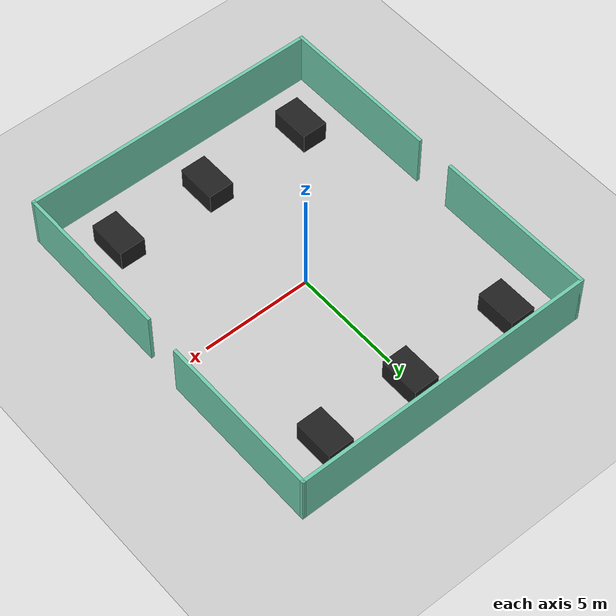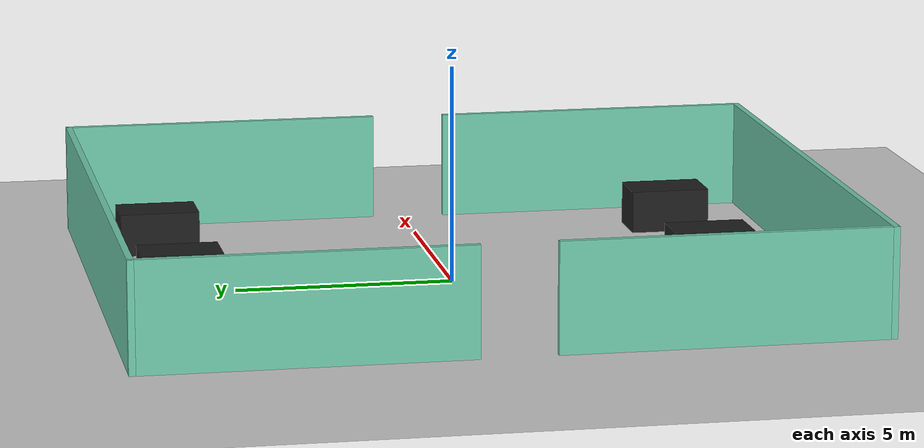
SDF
<sdf version="1.6">
 <world name="default">
  <light name="sun" type="directional">
   <pose>0 0 10 0 -0 0</pose>
   <diffuse>0.8 0.8 0.8 1</diffuse>
   <specular>0.2 0.2 0.2 1</specular>
   <attenuation>
    <range>1000</range>
    <constant>0.9</constant>
    <linear>0.01</linear>
    <quadratic>0.001</quadratic>
   </attenuation>
   <direction>-0.5 0.1 -0.9</direction>
  </light>
  <model name="ground_plane">
   <static>1</static>
   <link name="link">
    <collision name="collision">
     <geometry><plane><normal>0 0 1</normal><size>100 100</size></plane></geometry>
     <surface><friction><ode><mu>100</mu><mu2>50</mu2></ode></friction></surface>
    </collision>
    <visual name="visual">
     <cast_shadows>0</cast_shadows>
     <geometry><plane><normal>0 0 1</normal><size>100 100</size></plane></geometry>
     <material>
      <script><uri>file://media/materials/scripts/gazebo.material</uri><name>Gazebo/Grey</name></script>
     </material>
    </visual>
   </link>
  </model>
  <gravity>0 0 -9.8</gravity>
  <magnetic_field>6e-06 2.3e-05 -4.2e-05</magnetic_field>
  <atmosphere type="adiabatic"/>
  <physics name="default_physics" default="0" type="ode">
   <max_step_size>0.001</max_step_size>
   <real_time_factor>1</real_time_factor>
   <real_time_update_rate>1000</real_time_update_rate>
  </physics>
  <scene><ambient>0.4 0.4 0.4 1</ambient><background>0.7 0.7 0.7 1</background><shadows>1</shadows></scene>
  <spherical_coordinates>
   <surface_model>EARTH_WGS84</surface_model>
   <latitude_deg>0</latitude_deg>
   <longitude_deg>0</longitude_deg>
   <elevation>0</elevation>
   <heading_deg>0</heading_deg>
  </spherical_coordinates>
  <model name="map">
   <link name="link_0">
    <inertial>
     <mass>2.20266</mass>
     <inertia>
      <ixx>0.819058</ixx>
      <ixy>0</ixy>
      <ixz>0</ixz>
      <iyy>0.44077</iyy>
      <iyz>0</iyz>
      <izz>0.892718</izz>
     </inertia>
    </inertial>
    <pose>-4.77477 6.18733 0 0 -0 0</pose>
    <visual name="visual">
     <geometry><box><size>1.18376 1.8607 1</size></box></geometry>
     <material>
      <lighting>1</lighting>
      <script><uri>file://media/materials/scripts/gazebo.material</uri><name>Gazebo/Black</name></script>
      <shader type="pixel"/>
     </material>
    </visual>
    <collision name="collision">
     <geometry><box><size>1.18376 1.8607 1</size></box></geometry>
     <surface>
      <friction>
       <ode><mu>1</mu><mu2>1</mu2><fdir1>0 0 0</fdir1><slip1>0</slip1><slip2>0</slip2></ode>
       <torsional>
        <coefficient>1</coefficient>
        <patch_radius>0</patch_radius>
        <surface_radius>0</surface_radius>
        <use_patch_radius>1</use_patch_radius>
        <ode><slip>0</slip></ode>
       </torsional>
      </friction>
      <bounce><restitution_coefficient>0</restitution_coefficient><threshold>1e+06</threshold></bounce>
      <contact>
       <collide_without_contact>0</collide_without_contact>
       <collide_without_contact_bitmask>1</collide_without_contact_bitmask>
       <collide_bitmask>1</collide_bitmask>
       <ode>
        <soft_cfm>0</soft_cfm>
        <soft_erp>0.2</soft_erp>
        <kp>1e+13</kp>
        <kd>1</kd>
        <max_vel>0.01</max_vel>
        <min_depth>0</min_depth>
       </ode>
       <bullet>
        <split_impulse>1</split_impulse>
        <split_impulse_penetration_threshold>-0.01</split_impulse_penetration_threshold>
        <soft_cfm>0</soft_cfm>
        <soft_erp>0.2</soft_erp>
        <kp>1e+13</kp>
        <kd>1</kd>
       </bullet>
      </contact>
     </surface>
    </collision>
   </link>
   <link name="link_0_clone">
    <inertial>
     <mass>2.20266</mass>
     <inertia>
      <ixx>0.819058</ixx>
      <ixy>0</ixy>
      <ixz>0</ixz>
      <iyy>0.44077</iyy>
      <iyz>0</iyz>
      <izz>0.892718</izz>
     </inertia>
    </inertial>
    <pose>0.195199 6.16883 0 0 -0 0</pose>
    <visual name="visual">
     <geometry><box><size>1.18376 1.8607 1</size></box></geometry>
     <material>
      <lighting>1</lighting>
      <script><uri>file://media/materials/scripts/gazebo.material</uri><name>Gazebo/Black</name></script>
      <shader type="pixel"/>
     </material>
    </visual>
    <collision name="collision">
     <geometry><box><size>1.18376 1.8607 1</size></box></geometry>
     <surface>
      <friction>
       <ode><mu>1</mu><mu2>1</mu2><fdir1>0 0 0</fdir1><slip1>0</slip1><slip2>0</slip2></ode>
       <torsional>
        <coefficient>1</coefficient>
        <patch_radius>0</patch_radius>
        <surface_radius>0</surface_radius>
        <use_patch_radius>1</use_patch_radius>
        <ode><slip>0</slip></ode>
       </torsional>
      </friction>
      <bounce><restitution_coefficient>0</restitution_coefficient><threshold>1e+06</threshold></bounce>
      <contact>
       <collide_without_contact>0</collide_without_contact>
       <collide_without_contact_bitmask>1</collide_without_contact_bitmask>
       <collide_bitmask>1</collide_bitmask>
       <ode>
        <soft_cfm>0</soft_cfm>
        <soft_erp>0.2</soft_erp>
        <kp>1e+13</kp>
        <kd>1</kd>
        <max_vel>0.01</max_vel>
        <min_depth>0</min_depth>
       </ode>
       <bullet>
        <split_impulse>1</split_impulse>
        <split_impulse_penetration_threshold>-0.01</split_impulse_penetration_threshold>
        <soft_cfm>0</soft_cfm>
        <soft_erp>0.2</soft_erp>
        <kp>1e+13</kp>
        <kd>1</kd>
       </bullet>
      </contact>
     </surface>
    </collision>
   </link>
   <link name="link_0_clone_0">
    <inertial>
     <mass>2.20266</mass>
     <inertia>
      <ixx>0.819058</ixx>
      <ixy>0</ixy>
      <ixz>0</ixz>
      <iyy>0.44077</iyy>
      <iyz>0</iyz>
      <izz>0.892718</izz>
     </inertia>
    </inertial>
    <pose>4.46886 6.20368 0 0 -0 0</pose>
    <visual name="visual">
     <geometry><box><size>1.18376 1.8607 1</size></box></geometry>
     <material>
      <lighting>1</lighting>
      <script><uri>file://media/materials/scripts/gazebo.material</uri><name>Gazebo/Black</name></script>
      <shader type="pixel"/>
     </material>
    </visual>
    <collision name="collision">
     <geometry><box><size>1.18376 1.8607 1</size></box></geometry>
     <surface>
      <friction>
       <ode><mu>1</mu><mu2>1</mu2><fdir1>0 0 0</fdir1><slip1>0</slip1><slip2>0</slip2></ode>
       <torsional>
        <coefficient>1</coefficient>
        <patch_radius>0</patch_radius>
        <surface_radius>0</surface_radius>
        <use_patch_radius>1</use_patch_radius>
        <ode><slip>0</slip></ode>
       </torsional>
      </friction>
      <bounce><restitution_coefficient>0</restitution_coefficient><threshold>1e+06</threshold></bounce>
      <contact>
       <collide_without_contact>0</collide_without_contact>
       <collide_without_contact_bitmask>1</collide_without_contact_bitmask>
       <collide_bitmask>1</collide_bitmask>
       <ode>
        <soft_cfm>0</soft_cfm>
        <soft_erp>0.2</soft_erp>
        <kp>1e+13</kp>
        <kd>1</kd>
        <max_vel>0.01</max_vel>
        <min_depth>0</min_depth>
       </ode>
       <bullet>
        <split_impulse>1</split_impulse>
        <split_impulse_penetration_threshold>-0.01</split_impulse_penetration_threshold>
        <soft_cfm>0</soft_cfm>
        <soft_erp>0.2</soft_erp>
        <kp>1e+13</kp>
        <kd>1</kd>
       </bullet>
      </contact>
     </surface>
    </collision>
   </link>
   <link name="link_0_clone_1">
    <inertial>
     <mass>2.20266</mass>
     <inertia>
      <ixx>0.819058</ixx>
      <ixy>0</ixy>
      <ixz>0</ixz>
      <iyy>0.44077</iyy>
      <iyz>0</iyz>
      <izz>0.892718</izz>
     </inertia>
    </inertial>
    <pose>-4.76135 -6.18996 0 0 -0 0</pose>
    <visual name="visual">
     <geometry><box><size>1.18376 1.8607 1</size></box></geometry>
     <material>
      <lighting>1</lighting>
      <script><uri>file://media/materials/scripts/gazebo.material</uri><name>Gazebo/Black</name></script>
      <shader type="pixel"/>
     </material>
    </visual>
    <collision name="collision">
     <geometry><box><size>1.18376 1.8607 1</size></box></geometry>
     <surface>
      <friction>
       <ode><mu>1</mu><mu2>1</mu2><fdir1>0 0 0</fdir1><slip1>0</slip1><slip2>0</slip2></ode>
       <torsional>
        <coefficient>1</coefficient>
        <patch_radius>0</patch_radius>
        <surface_radius>0</surface_radius>
        <use_patch_radius>1</use_patch_radius>
        <ode><slip>0</slip></ode>
       </torsional>
      </friction>
      <bounce><restitution_coefficient>0</restitution_coefficient><threshold>1e+06</threshold></bounce>
      <contact>
       <collide_without_contact>0</collide_without_contact>
       <collide_without_contact_bitmask>1</collide_without_contact_bitmask>
       <collide_bitmask>1</collide_bitmask>
       <ode>
        <soft_cfm>0</soft_cfm>
        <soft_erp>0.2</soft_erp>
        <kp>1e+13</kp>
        <kd>1</kd>
        <max_vel>0.01</max_vel>
        <min_depth>0</min_depth>
       </ode>
       <bullet>
        <split_impulse>1</split_impulse>
        <split_impulse_penetration_threshold>-0.01</split_impulse_penetration_threshold>
        <soft_cfm>0</soft_cfm>
        <soft_erp>0.2</soft_erp>
        <kp>1e+13</kp>
        <kd>1</kd>
       </bullet>
      </contact>
     </surface>
    </collision>
   </link>
   <link name="link_0_clone_2">
    <inertial>
     <mass>2.20266</mass>
     <inertia>
      <ixx>0.819058</ixx>
      <ixy>0</ixy>
      <ixz>0</ixz>
      <iyy>0.44077</iyy>
      <iyz>0</iyz>
      <izz>0.892718</izz>
     </inertia>
    </inertial>
    <pose>0.192523 -6.17848 0 0 -0 0</pose>
    <visual name="visual">
     <geometry><box><size>1.18376 1.8607 1</size></box></geometry>
     <material>
      <lighting>1</lighting>
      <script><uri>file://media/materials/scripts/gazebo.material</uri><name>Gazebo/Black</name></script>
      <shader type="pixel"/>
     </material>
    </visual>
    <collision name="collision">
     <geometry><box><size>1.18376 1.8607 1</size></box></geometry>
     <surface>
      <friction>
       <ode><mu>1</mu><mu2>1</mu2><fdir1>0 0 0</fdir1><slip1>0</slip1><slip2>0</slip2></ode>
       <torsional>
        <coefficient>1</coefficient>
        <patch_radius>0</patch_radius>
        <surface_radius>0</surface_radius>
        <use_patch_radius>1</use_patch_radius>
        <ode><slip>0</slip></ode>
       </torsional>
      </friction>
      <bounce><restitution_coefficient>0</restitution_coefficient><threshold>1e+06</threshold></bounce>
      <contact>
       <collide_without_contact>0</collide_without_contact>
       <collide_without_contact_bitmask>1</collide_without_contact_bitmask>
       <collide_bitmask>1</collide_bitmask>
       <ode>
        <soft_cfm>0</soft_cfm>
        <soft_erp>0.2</soft_erp>
        <kp>1e+13</kp>
        <kd>1</kd>
        <max_vel>0.01</max_vel>
        <min_depth>0</min_depth>
       </ode>
       <bullet>
        <split_impulse>1</split_impulse>
        <split_impulse_penetration_threshold>-0.01</split_impulse_penetration_threshold>
        <soft_cfm>0</soft_cfm>
        <soft_erp>0.2</soft_erp>
        <kp>1e+13</kp>
        <kd>1</kd>
       </bullet>
      </contact>
     </surface>
    </collision>
   </link>
   <link name="link_0_clone_3">
    <inertial>
     <mass>2.20266</mass>
     <inertia>
      <ixx>0.819058</ixx>
      <ixy>0</ixy>
      <ixz>0</ixz>
      <iyy>0.44077</iyy>
      <iyz>0</iyz>
      <izz>0.892718</izz>
     </inertia>
    </inertial>
    <pose>4.67954 -6.19142 0 0 -0 0</pose>
    <visual name="visual">
     <geometry><box><size>1.18376 1.8607 1</size></box></geometry>
     <material>
      <lighting>1</lighting>
      <script><uri>file://media/materials/scripts/gazebo.material</uri><name>Gazebo/Black</name></script>
      <shader type="pixel"/>
     </material>
    </visual>
    <collision name="collision">
     <geometry><box><size>1.18376 1.8607 1</size></box></geometry>
     <surface>
      <friction>
       <ode><mu>1</mu><mu2>1</mu2><fdir1>0 0 0</fdir1><slip1>0</slip1><slip2>0</slip2></ode>
       <torsional>
        <coefficient>1</coefficient>
        <patch_radius>0</patch_radius>
        <surface_radius>0</surface_radius>
        <use_patch_radius>1</use_patch_radius>
        <ode><slip>0</slip></ode>
       </torsional>
      </friction>
      <bounce><restitution_coefficient>0</restitution_coefficient><threshold>1e+06</threshold></bounce>
      <contact>
       <collide_without_contact>0</collide_without_contact>
       <collide_without_contact_bitmask>1</collide_without_contact_bitmask>
       <collide_bitmask>1</collide_bitmask>
       <ode>
        <soft_cfm>0</soft_cfm>
        <soft_erp>0.2</soft_erp>
        <kp>1e+13</kp>
        <kd>1</kd>
        <max_vel>0.01</max_vel>
        <min_depth>0</min_depth>
       </ode>
       <bullet>
        <split_impulse>1</split_impulse>
        <split_impulse_penetration_threshold>-0.01</split_impulse_penetration_threshold>
        <soft_cfm>0</soft_cfm>
        <soft_erp>0.2</soft_erp>
        <kp>1e+13</kp>
        <kd>1</kd>
       </bullet>
      </contact>
     </surface>
    </collision>
   </link>
   <static>0</static>
   <pose>-0.105173 0.084927 0.5 0 -0 0</pose>
  </model>
  <model name="Untitled">
   <pose>0.028535 -0.169622 0 0 -0 0</pose>
   <link name="Wall_11">
    <collision name="Wall_11_Collision">
     <geometry><box><size>7.5 0.15 2.5</size></box></geometry>
     <pose>0 0 1.25 0 -0 0</pose>
    </collision>
    <visual name="Wall_11_Visual">
     <pose>0 0 1.25 0 -0 0</pose>
     <geometry><box><size>7.5 0.15 2.5</size></box></geometry>
     <material>
      <script><uri>file://media/materials/scripts/gazebo.material</uri><name>Gazebo/Grey</name></script>
      <ambient>0.435294 0.796078 0.67451 1</ambient>
     </material>
     <meta><layer>0</layer></meta>
    </visual>
    <pose>-6.938 4.59994 0 0 -0 -1.5708</pose>
   </link>
   <link name="Wall_15">
    <collision name="Wall_15_Collision">
     <geometry><box><size>7.5 0.15 2.5</size></box></geometry>
     <pose>0 0 1.25 0 -0 0</pose>
    </collision>
    <visual name="Wall_15_Visual">
     <pose>0 0 1.25 0 -0 0</pose>
     <geometry><box><size>7.5 0.15 2.5</size></box></geometry>
     <material>
      <script><uri>file://media/materials/scripts/gazebo.material</uri><name>Gazebo/Grey</name></script>
      <ambient>0.435294 0.796078 0.67451 1</ambient>
     </material>
     <meta><layer>0</layer></meta>
    </visual>
    <pose>-6.925 -4.60006 0 0 -0 -1.5708</pose>
   </link>
   <link name="Wall_17">
    <collision name="Wall_17_Collision">
     <geometry><box><size>7.5 0.15 2.5</size></box></geometry>
     <pose>0 0 1.25 0 -0 0</pose>
    </collision>
    <visual name="Wall_17_Visual">
     <pose>0 0 1.25 0 -0 0</pose>
     <geometry><box><size>7.5 0.15 2.5</size></box></geometry>
     <material>
      <script><uri>file://media/materials/scripts/gazebo.material</uri><name>Gazebo/Grey</name></script>
      <ambient>0.435294 0.796078 0.67451 1</ambient>
     </material>
     <meta><layer>0</layer></meta>
    </visual>
    <pose>6.792 -4.60006 0 0 -0 -1.5708</pose>
   </link>
   <link name="Wall_18">
    <collision name="Wall_18_Collision">
     <geometry><box><size>13.8671 0.15 2.5</size></box></geometry>
     <pose>0 0 1.25 0 -0 0</pose>
    </collision>
    <visual name="Wall_18_Visual">
     <pose>0 0 1.25 0 -0 0</pose>
     <geometry><box><size>13.8671 0.15 2.5</size></box></geometry>
     <material>
      <script><uri>file://media/materials/scripts/gazebo.material</uri><name>Gazebo/Grey</name></script>
      <ambient>0.435294 0.796078 0.67451 1</ambient>
     </material>
     <meta><layer>0</layer></meta>
    </visual>
    <pose>-0.0665 -8.27506 0 0 -0 3.14159</pose>
   </link>
   <link name="Wall_8">
    <collision name="Wall_8_Collision">
     <geometry><box><size>14.0266 0.15 2.5</size></box></geometry>
     <pose>0 0 1.25 0 -0 0</pose>
    </collision>
    <visual name="Wall_8_Visual">
     <pose>0 0 1.25 0 -0 0</pose>
     <geometry><box><size>14.0266 0.15 2.5</size></box></geometry>
     <material>
      <script><uri>file://media/materials/scripts/gazebo.material</uri><name>Gazebo/Grey</name></script>
      <ambient>0.435294 0.796078 0.67451 1</ambient>
     </material>
     <meta><layer>0</layer></meta>
    </visual>
    <pose>-0 8.27494 0 0 -0 0</pose>
   </link>
   <link name="Wall_9">
    <collision name="Wall_9_Collision">
     <geometry><box><size>7.5 0.15 2.5</size></box></geometry>
     <pose>0 0 1.25 0 -0 0</pose>
    </collision>
    <visual name="Wall_9_Visual">
     <pose>0 0 1.25 0 -0 0</pose>
     <geometry><box><size>7.5 0.15 2.5</size></box></geometry>
     <material>
      <script><uri>file://media/materials/scripts/gazebo.material</uri><name>Gazebo/Grey</name></script>
      <ambient>0.435294 0.796078 0.67451 1</ambient>
     </material>
     <meta><layer>0</layer></meta>
    </visual>
    <pose>6.9315 4.59994 0 0 -0 -1.57256</pose>
   </link>
   <static>1</static>
  </model>
 </world>
</sdf>
